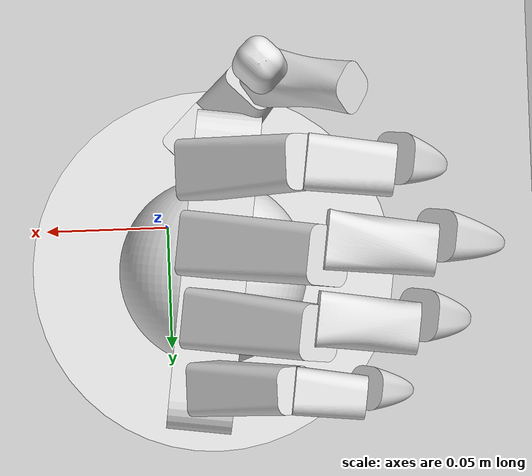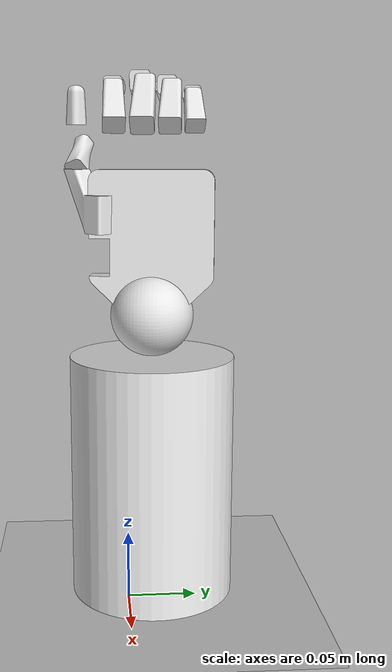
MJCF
<mujoco model="Hand_forearm">
  <compiler angle="radian" autolimits="true" meshdir="assets" />
  <option gravity="0 0 -9.81" integrator="implicitfast" />
  <default>
    <geom contype="2" conaffinity="1" />
  </default>
  <asset>
    <mesh name="fore_arm_1_0" file="fore_arm_1_0.stl" />
    <mesh name="fore_arm_1_1" file="fore_arm_1_1.stl" />
    <mesh name="wrist_1_2" file="wrist_1_2.stl" />
    <mesh name="wrist_1_3" file="wrist_1_3.stl" />
    <mesh name="human_hand_v3__Palm_1_4" file="human_hand_v3__Palm_1_4.stl" />
    <mesh name="human_hand_v3__Palm_1_5" file="human_hand_v3__Palm_1_5.stl" />
    <mesh name="Thumb_finger__Thumb_Base_1_6" file="Thumb_finger__Thumb_Base_1_6.stl" />
    <mesh name="Thumb_finger__Thumb_Base_1_7" file="Thumb_finger__Thumb_Base_1_7.stl" />
    <mesh name="Thumb_finger__Thumb_Proximal_1_8" file="Thumb_finger__Thumb_Proximal_1_8.stl" />
    <mesh name="Thumb_finger__Thumb_Proximal_1_9" file="Thumb_finger__Thumb_Proximal_1_9.stl" />
    <mesh name="Thumb_finger__Thumb_Distal_v2_1_10" file="Thumb_finger__Thumb_Distal_v2_1_10.stl" />
    <mesh name="Thumb_finger__Thumb_Distal_v2_1_11" file="Thumb_finger__Thumb_Distal_v2_1_11.stl" />
    <mesh name="index_assem__Index_Proximal_1_12" file="index_assem__Index_Proximal_1_12.stl" />
    <mesh name="index_assem__Index_Proximal_1_13" file="index_assem__Index_Proximal_1_13.stl" />
    <mesh name="index_assem__Index_Middle_1_14" file="index_assem__Index_Middle_1_14.stl" />
    <mesh name="index_assem__Index_Middle_1_15" file="index_assem__Index_Middle_1_15.stl" />
    <mesh name="index_assem__Index_Distal_1_16" file="index_assem__Index_Distal_1_16.stl" />
    <mesh name="index_assem__Index_Distal_1_17" file="index_assem__Index_Distal_1_17.stl" />
    <mesh name="Middle_Finger__Middle_Proximal_5_18" file="Middle_Finger__Middle_Proximal_5_18.stl" />
    <mesh name="Middle_Finger__Middle_Proximal_5_19" file="Middle_Finger__Middle_Proximal_5_19.stl" />
    <mesh name="Middle_Finger__Middle_Middle_4_20" file="Middle_Finger__Middle_Middle_4_20.stl" />
    <mesh name="Middle_Finger__Middle_Middle_4_21" file="Middle_Finger__Middle_Middle_4_21.stl" />
    <mesh name="Middle_Finger__Middle_Distal_4_22" file="Middle_Finger__Middle_Distal_4_22.stl" />
    <mesh name="Middle_Finger__Middle_Distal_4_23" file="Middle_Finger__Middle_Distal_4_23.stl" />
    <mesh name="Ring_finger__Ring_Proximal_1_24" file="Ring_finger__Ring_Proximal_1_24.stl" />
    <mesh name="Ring_finger__Ring_Proximal_1_25" file="Ring_finger__Ring_Proximal_1_25.stl" />
    <mesh name="Ring_finger__Ring_Middle_1_26" file="Ring_finger__Ring_Middle_1_26.stl" />
    <mesh name="Ring_finger__Ring_Middle_1_27" file="Ring_finger__Ring_Middle_1_27.stl" />
    <mesh name="Ring_finger__Ring_Distal_1_28" file="Ring_finger__Ring_Distal_1_28.stl" />
    <mesh name="Ring_finger__Ring_Distal_1_29" file="Ring_finger__Ring_Distal_1_29.stl" />
    <mesh name="Pinky_finger__Pinky_Proximal_1_30" file="Pinky_finger__Pinky_Proximal_1_30.stl" />
    <mesh name="Pinky_finger__Pinky_Proximal_1_31" file="Pinky_finger__Pinky_Proximal_1_31.stl" />
    <mesh name="Pinky_finger__Pinky_Middle_1_32" file="Pinky_finger__Pinky_Middle_1_32.stl" />
    <mesh name="Pinky_finger__Pinky_Middle_1_33" file="Pinky_finger__Pinky_Middle_1_33.stl" />
    <mesh name="Pinky_finger__Pinky_Distal_1_34" file="Pinky_finger__Pinky_Distal_1_34.stl" />
    <mesh name="Pinky_finger__Pinky_Distal_1_35" file="Pinky_finger__Pinky_Distal_1_35.stl" />
  </asset>
  <worldbody>
    <light pos="0 0 3" dir="0 0 -1" directional="true" />
    <geom name="ground" type="plane" size="5 5 0.1" contype="1" conaffinity="1" rgba="0.8 0.8 0.8 1" />
    <body name="base_link" pos="0 0 0.001" quat="0.707107 0.707107 0 0">
      <inertial pos="-0.0174187597 0.09 -0.0185985164" mass="2.03575" diaginertia="0.00366435 0.00732871 0.00732871" quat="0.707106781 0 0 -0.707106781" />
      <geom pos="0 0 0" quat="1 0 0 0" group="2" contype="0" conaffinity="0" type="mesh" mesh="fore_arm_1_0" rgba="0.894117647 0.894117647 0.894117647 1" name="base_link_visual0" />
      <geom pos="0 0 0" quat="1 0 0 0" group="3" type="mesh" mesh="fore_arm_1_1" rgba="0.4 0.4 0.4 1" name="base_link_collision0" />
      <body name="wrist_1" pos="-0.0174191077 0.209999556 -0.0185987489" quat="1 0 0 0">
        <joint name="fore_arm_1__wrist_1" pos="0 0 0" axis="0.999669 -0.0257426 0.000239032" type="hinge" range="-0.17453 0.17453" damping="0.400651" armature="0.00170595" />
        <inertial pos="3.47999681e-07 4.44016192e-07 2.32492648e-07" mass="0.113097" diaginertia="4.0715e-05 4.0715e-05 4.0715e-05" quat="0.709565028 0.704639958 0 0" />
        <geom pos="0 0 0" quat="1 0 0 0" group="2" contype="0" conaffinity="0" type="mesh" mesh="wrist_1_2" rgba="0.894117647 0.894117647 0.894117647 1" name="wrist_1_visual0" />
        <geom pos="0 0 0" quat="1 0 0 0" group="3" type="mesh" mesh="wrist_1_3" rgba="0.4 0.4 0.4 1" name="wrist_1_collision0" />
        <body name="human_hand_v3_2__Palm_1" pos="3.47999681e-07 4.44016192e-07 2.32492648e-07" quat="1 0 0 0">
          <joint name="wrist_1__human_hand_v3_2__Palm_1" pos="0 0 0" axis="0.000165001 0.0156918 0.999877" type="hinge" range="-1 1" damping="0.490622" armature="0.00256123" />
          <inertial pos="0.00221148439 0.0858546322 -0.00261542321" mass="0.146725" diaginertia="8.61669815e-05 0.000126511848 0.00020475537" quat="0.518384149 0.467397041 -0.530716045 -0.48078931" />
          <geom pos="0 0 0" quat="1 0 0 0" group="2" contype="0" conaffinity="0" type="mesh" mesh="human_hand_v3__Palm_1_4" rgba="0.894117647 0.894117647 0.894117647 1" name="human_hand_v3_2__Palm_1_visual0" />
          <geom pos="0 0 0" quat="1 0 0 0" group="3" type="mesh" mesh="human_hand_v3__Palm_1_5" rgba="0.4 0.4 0.4 1" name="human_hand_v3_2__Palm_1_collision0" />
          <body name="human_hand_v3_2__Thumb_finger_1__Thumb_Base_1" pos="0.0015137891 0.0591238369 0.0364686792" quat="1 0 0 0">
            <joint name="human_hand_v3_2__Palm_1__human_hand_v3_2__Thumb_finger_1__Thumb_Base_1" pos="0 0 0" axis="-0.0257438 -0.999625 0.00928199" type="hinge" range="0 1.5708" damping="0.00229873" ref="0.78541" limited="true" armature="4.31818e-06" />
            <inertial pos="-0.0052688188 0.0207226913 0.00560700449" mass="0.0146302" diaginertia="8.05767739e-07 3.18179048e-06 3.27284178e-06" quat="-0.398254802 0.342465709 -0.170586176 0.833673022" />
            <geom pos="0 0 0" quat="1 0 0 0" group="2" contype="0" conaffinity="0" type="mesh" mesh="Thumb_finger__Thumb_Base_1_6" rgba="0.894117647 0.894117647 0.894117647 1" name="human_hand_v3_2__Thumb_finger_1__Thumb_Base_1_visual0" />
            <geom pos="0 0 0" quat="1 0 0 0" group="3" type="mesh" mesh="Thumb_finger__Thumb_Base_1_7" rgba="0.4 0.4 0.4 1" name="human_hand_v3_2__Thumb_finger_1__Thumb_Base_1_collision0" />
            <body name="human_hand_v3_2__Thumb_finger_1__Thumb_Proximal_1" pos="-0.0160461371 0.044901719 0.0167760883" quat="1 0 0 0">
              <joint name="human_hand_v3_2__Thumb_finger_1__Thumb_Base_1__human_hand_v3_2__Thumb_finger_1__Thumb_Proximal_1" pos="0 0 0" axis="-0.706873 0.0247582 0.706907" type="hinge" range="0 1.5708" damping="0.00202173" ref="0" limited="true" armature="5.16138e-06" />
              <joint name="human_hand_v3_2__Thumb_finger_1__Thumb_Base_1__human_hand_v3_2__Thumb_finger_1__Thumb_Proximal_1_abd" type="hinge" pos="0 0 0" axis="-0.706872 0.0116576 -0.707246" range="-0.785398 0.785398" limited="true" damping="0.00202173" armature="5.16138e-06" /><inertial pos="0.000373396063 0.0144994679 -0.000134202197" mass="0.00482838" diaginertia="1.22991477e-07 4.55144399e-07 4.64430124e-07" quat="0.644084125 0.268856379 -0.281993644 -0.658294365" />
              <geom pos="0 0 0" quat="1 0 0 0" group="2" contype="0" conaffinity="0" type="mesh" mesh="Thumb_finger__Thumb_Proximal_1_8" rgba="0.894117647 0.894117647 0.894117647 1" name="human_hand_v3_2__Thumb_finger_1__Thumb_Proximal_1_visual0" />
              <geom pos="0 0 0" quat="1 0 0 0" group="3" type="mesh" mesh="Thumb_finger__Thumb_Proximal_1_9" rgba="0.4 0.4 0.4 1" name="human_hand_v3_2__Thumb_finger_1__Thumb_Proximal_1_collision0" />
              <body name="human_hand_v3_2__Thumb_finger_1__Thumb_Distal_v2_1" pos="0.000798048593 0.0309886441 -0.000287311866" quat="1 0 0 0">
                <joint name="human_hand_v3_2__Thumb_finger_1__Thumb_Proximal_1__human_hand_v3_2__Thumb_finger_1__Thumb_Distal_v2_1" pos="0 0 0" axis="-0.706872 0.0247683 0.706907" type="hinge" range="0 1.5708" damping="0.000266238" ref="0" limited="true" armature="4.43016e-07" />
                <inertial pos="0.000309622005 0.0120225614 -0.000111635152" mass="0.00306267" diaginertia="5.86965312e-08 1.93958027e-07 1.98802242e-07" quat="0.264103332 -0.646047641 0.660354259 -0.277135577" />
                <geom pos="0 0 0" quat="1 0 0 0" group="2" contype="0" conaffinity="0" type="mesh" mesh="Thumb_finger__Thumb_Distal_v2_1_10" rgba="0.894117647 0.894117647 0.894117647 1" name="human_hand_v3_2__Thumb_finger_1__Thumb_Distal_v2_1_visual0" />
                <geom pos="0 0 0" quat="1 0 0 0" group="3" type="mesh" mesh="Thumb_finger__Thumb_Distal_v2_1_11" rgba="0.4 0.4 0.4 1" name="human_hand_v3_2__Thumb_finger_1__Thumb_Distal_v2_1_collision0" />
              </body>
            </body>
          </body>
          <body name="human_hand_v3_2__index_assem_2__Index_Proximal_1" pos="0.00344966462 0.134209946 0.0267710813" quat="1 0 0 0">
            <joint name="human_hand_v3_2__Palm_1__human_hand_v3_2__index_assem_2__Index_Proximal_1" pos="0 0 0" axis="-0 0.00928507 0.999957" type="hinge" range="0 1.5708" damping="0.00509945" ref="0.785398" limited="true" armature="1.46717e-05" />
            <inertial pos="-0.0127746596 0.0134494159 -0.00012488389" mass="0.00857536" diaginertia="3.11851083e-07 1.23617188e-06 1.23617804e-06" quat="0.630568579 -0.668369518 0.284456211 -0.273404679" />
            <geom pos="0 0 0" quat="1 0 0 0" group="2" contype="0" conaffinity="0" type="mesh" mesh="index_assem__Index_Proximal_1_12" rgba="0.894117647 0.894117647 0.894117647 1" name="human_hand_v3_2__index_assem_2__Index_Proximal_1_visual0" />
            <geom pos="0 0 0" quat="1 0 0 0" group="3" type="mesh" mesh="index_assem__Index_Proximal_1_13" rgba="0.4 0.4 0.4 1" name="human_hand_v3_2__index_assem_2__Index_Proximal_1_collision0" />
            <body name="human_hand_v3_2__index_assem_2__Index_Middle_1" pos="-0.0268580846 0.0282767458 -0.00026256293" quat="1 0 0 0">
              <joint name="human_hand_v3_2__index_assem_2__Index_Proximal_1__human_hand_v3_2__index_assem_2__Index_Middle_1" pos="0 0 0" axis="0 0.00928507 0.999957" type="hinge" range="0 1.5708" damping="0.000669185" ref="0.785398" limited="true" armature="1.34686e-06" />
              <inertial pos="-0.0106441693 0.000274100035 -2.54514818e-06" mass="0.0037779" diaginertia="1.05473265e-07 2.04658729e-07 2.04660006e-07" quat="0.999910978 0.00351040613 -0.00016471601 -0.0128719408" />
              <geom pos="0 0 0" quat="1 0 0 0" group="2" contype="0" conaffinity="0" type="mesh" mesh="index_assem__Index_Middle_1_14" rgba="0.894117647 0.894117647 0.894117647 1" name="human_hand_v3_2__index_assem_2__Index_Middle_1_visual0" />
              <geom pos="0 0 0" quat="1 0 0 0" group="3" type="mesh" mesh="index_assem__Index_Middle_1_15" rgba="0.4 0.4 0.4 1" name="human_hand_v3_2__index_assem_2__Index_Middle_1_collision0" />
              <body name="human_hand_v3_2__index_assem_2__Index_Distal_1" pos="-0.0219927086 0.000566338435 -5.25871964e-06" quat="1 0 0 0">
                <joint name="human_hand_v3_2__index_assem_2__Index_Middle_1__human_hand_v3_2__index_assem_2__Index_Distal_1" pos="0 0 0" axis="0 0.00928507 0.999957" type="hinge" range="0 1.5708" damping="0.000105071" ref="0.785356" limited="true" armature="6.89998e-08" />
                <inertial pos="-0.00483404282 -0.00459072767 4.27185014e-05" mass="0.00155249" diaginertia="2.58713669e-08 4.74384234e-08 4.74400097e-08" quat="0.926692432 -0.0614322629 -0.0210865155 0.370165602" />
                <geom pos="0 0 0" quat="1 0 0 0" group="2" contype="0" conaffinity="0" type="mesh" mesh="index_assem__Index_Distal_1_16" rgba="0.894117647 0.894117647 0.894117647 1" name="human_hand_v3_2__index_assem_2__Index_Distal_1_visual0" />
                <geom pos="0 0 0" quat="1 0 0 0" group="3" type="mesh" mesh="index_assem__Index_Distal_1_17" rgba="0.4 0.4 0.4 1" name="human_hand_v3_2__index_assem_2__Index_Distal_1_collision0" />
              </body>
            </body>
          </body>
          <body name="human_hand_v3_2__Middle_Finger_1__Middle_Proximal_5" pos="0.00344966462 0.134028887 0.0072719219" quat="1 0 0 0">
            <joint name="human_hand_v3_2__Palm_1__human_hand_v3_2__Middle_Finger_1__Middle_Proximal_5" pos="0 0 0" axis="-0 0.00928507 0.999957" type="hinge" range="0 1.5708" damping="0.0082076" ref="0.785398" limited="true" armature="2.54171e-05" />
            <inertial pos="-0.0147921096 0.0155734276 -0.000144606955" mass="0.0112897" diaginertia="4.68649039e-07 2.1293349e-06 2.12933606e-06" quat="0.350315552 0.181506149 0.430276883 0.811909069" />
            <geom pos="0 0 0" quat="1 0 0 0" group="2" contype="0" conaffinity="0" type="mesh" mesh="Middle_Finger__Middle_Proximal_5_18" rgba="0.894117647 0.894117647 0.894117647 1" name="human_hand_v3_2__Middle_Finger_1__Middle_Proximal_5_visual0" />
            <geom pos="0 0 0" quat="1 0 0 0" group="3" type="mesh" mesh="Middle_Finger__Middle_Proximal_5_19" rgba="0.4 0.4 0.4 1" name="human_hand_v3_2__Middle_Finger_1__Middle_Proximal_5_collision0" />
            <body name="human_hand_v3_2__Middle_Finger_1__Middle_Middle_4" pos="-0.0309900976 0.0326270143 -0.000302957226" quat="1 0 0 0">
              <joint name="human_hand_v3_2__Middle_Finger_1__Middle_Proximal_5__human_hand_v3_2__Middle_Finger_1__Middle_Middle_4" pos="0 0 0" axis="0 0.00928507 0.999957" type="hinge" range="0 1.5708" damping="0.0011812" ref="0.785398" limited="true" armature="2.66775e-06" />
              <inertial pos="-0.0126703486 0.000326276219 -3.02974891e-06" mass="0.00456309" diaginertia="1.25674477e-07 3.4826851e-07 3.48270013e-07" quat="0.999878871 0.00874812494 -0.00023212437 -0.0128708957" />
              <geom pos="0 0 0" quat="1 0 0 0" group="2" contype="0" conaffinity="0" type="mesh" mesh="Middle_Finger__Middle_Middle_4_20" rgba="0.894117647 0.894117647 0.894117647 1" name="human_hand_v3_2__Middle_Finger_1__Middle_Middle_4_visual0" />
              <geom pos="0 0 0" quat="1 0 0 0" group="3" type="mesh" mesh="Middle_Finger__Middle_Middle_4_21" rgba="0.4 0.4 0.4 1" name="human_hand_v3_2__Middle_Finger_1__Middle_Middle_4_collision0" />
              <body name="human_hand_v3_2__Middle_Finger_1__Middle_Distal_4" pos="-0.0269910515 0.000695051715 -6.4538832e-06" quat="1 0 0 0">
                <joint name="human_hand_v3_2__Middle_Finger_1__Middle_Middle_4__human_hand_v3_2__Middle_Finger_1__Middle_Distal_4" pos="0 0 0" axis="0 0.00928507 0.999957" type="hinge" range="0 1.5708" damping="0.000164801" ref="0.785407" limited="true" armature="1.69746e-07" />
                <inertial pos="-0.00652539237 -0.00619757999 5.78687614e-05" mass="0.00209578" diaginertia="3.4925756e-08 1.02342655e-07 1.02343889e-07" quat="0.558637004 -0.741931254 -0.294107599 0.225750817" />
                <geom pos="0 0 0" quat="1 0 0 0" group="2" contype="0" conaffinity="0" type="mesh" mesh="Middle_Finger__Middle_Distal_4_22" rgba="0.894117647 0.894117647 0.894117647 1" name="human_hand_v3_2__Middle_Finger_1__Middle_Distal_4_visual0" />
                <geom pos="0 0 0" quat="1 0 0 0" group="3" type="mesh" mesh="Middle_Finger__Middle_Distal_4_23" rgba="0.4 0.4 0.4 1" name="human_hand_v3_2__Middle_Finger_1__Middle_Distal_4_collision0" />
              </body>
            </body>
          </body>
          <body name="human_hand_v3_2__Ring_finger_1__Ring_Proximal_1" pos="0.003449652 0.133847556 -0.0122272325" quat="1 0 0 0">
            <joint name="human_hand_v3_2__Palm_1__human_hand_v3_2__Ring_finger_1__Ring_Proximal_1" pos="0 0 0" axis="-0 0.009285 0.999957" type="hinge" range="0 1.5708" damping="0.00574355" ref="0.785388" limited="true" armature="1.69685e-05" />
            <inertial pos="-0.0134297531 0.0141394065 -0.000131293396" mass="0.00901512" diaginertia="3.27843097e-07 1.41903445e-06 1.41903946e-06" quat="0.918875744 -0.0013157 -0.00309844177 -0.394532681" />
            <geom pos="0 0 0" quat="1 0 0 0" group="2" contype="0" conaffinity="0" type="mesh" mesh="Ring_finger__Ring_Proximal_1_24" rgba="0.894117647 0.894117647 0.894117647 1" name="human_hand_v3_2__Ring_finger_1__Ring_Proximal_1_visual0" />
            <geom pos="0 0 0" quat="1 0 0 0" group="3" type="mesh" mesh="Ring_finger__Ring_Proximal_1_25" rgba="0.4 0.4 0.4 1" name="human_hand_v3_2__Ring_finger_1__Ring_Proximal_1_collision0" />
            <body name="human_hand_v3_2__Ring_finger_1__Ring_Middle_1" pos="-0.028235 0.029727 -0.000276" quat="1 0 0 0">
              <joint name="human_hand_v3_2__Ring_finger_1__Ring_Proximal_1__human_hand_v3_2__Ring_finger_1__Ring_Middle_1" pos="0 0 0" axis="-0 0.009285 0.999957" type="hinge" range="0 1.5708" damping="0.000800206" ref="0.785391" limited="true" armature="1.69685e-06" />
              <inertial pos="-0.0120553535 0.00031053637 -2.91517597e-06" mass="0.00389782" diaginertia="9.81451082e-08 2.59583979e-07 2.59584013e-07" quat="0.986475757 0.163400945 -0.0022214553 -0.0126797998" />
              <geom pos="0 0 0" quat="1 0 0 0" group="2" contype="0" conaffinity="0" type="mesh" mesh="Ring_finger__Ring_Middle_1_26" rgba="0.894117647 0.894117647 0.894117647 1" name="human_hand_v3_2__Ring_finger_1__Ring_Middle_1_visual0" />
              <geom pos="0 0 0" quat="1 0 0 0" group="3" type="mesh" mesh="Ring_finger__Ring_Middle_1_27" rgba="0.4 0.4 0.4 1" name="human_hand_v3_2__Ring_finger_1__Ring_Middle_1_collision0" />
              <body name="human_hand_v3_2__Ring_finger_1__Ring_Distal_1" pos="-0.024992 0.000644 -6e-06" quat="1 0 0 0">
                <joint name="human_hand_v3_2__Ring_finger_1__Ring_Middle_1__human_hand_v3_2__Ring_finger_1__Ring_Distal_1" pos="0 0 0" axis="-0 0.009285 0.999957" type="hinge" range="0 1.5708" damping="0.000105076" ref="0.78548" limited="true" armature="6.90062e-08" />
                <inertial pos="-0.00483377421 -0.00459146544 4.25308403e-05" mass="0.00155249" diaginertia="2.58713384e-08 4.74384518e-08 4.74399097e-08" quat="0.926318667 -0.0669036647 -0.0232758093 0.370021437" />
                <geom pos="0 0 0" quat="1 0 0 0" group="2" contype="0" conaffinity="0" type="mesh" mesh="Ring_finger__Ring_Distal_1_28" rgba="0.894117647 0.894117647 0.894117647 1" name="human_hand_v3_2__Ring_finger_1__Ring_Distal_1_visual0" />
                <geom pos="0 0 0" quat="1 0 0 0" group="3" type="mesh" mesh="Ring_finger__Ring_Distal_1_29" rgba="0.4 0.4 0.4 1" name="human_hand_v3_2__Ring_finger_1__Ring_Distal_1_collision0" />
              </body>
            </body>
          </body>
          <body name="human_hand_v3_2__Pinky_finger_1__Pinky_Proximal_1" pos="0.003449652 0.133680556 -0.0302262325" quat="1 0 0 0">
            <joint name="human_hand_v3_2__Palm_1__human_hand_v3_2__Pinky_finger_1__Pinky_Proximal_1" pos="0 0 0" axis="-0 0.009285 0.999957" type="hinge" range="0 1.5708" damping="0.00226384" ref="0.785377" limited="true" armature="5.87773e-06" />
            <inertial pos="-0.0103879211 0.0109367716 -0.000101805183" mass="0.00524416" diaginertia="1.42028037e-07 5.14706065e-07 5.14708898e-07" quat="0.918861153 -0.00534850109 -0.00136756087 -0.394542399" />
            <geom pos="0 0 0" quat="1 0 0 0" group="2" contype="0" conaffinity="0" type="mesh" mesh="Pinky_finger__Pinky_Proximal_1_30" rgba="0.894117647 0.894117647 0.894117647 1" name="human_hand_v3_2__Pinky_finger_1__Pinky_Proximal_1_visual0" />
            <geom pos="0 0 0" quat="1 0 0 0" group="3" type="mesh" mesh="Pinky_finger__Pinky_Proximal_1_31" rgba="0.4 0.4 0.4 1" name="human_hand_v3_2__Pinky_finger_1__Pinky_Proximal_1_collision0" />
            <body name="human_hand_v3_2__Pinky_finger_1__Pinky_Middle_1" pos="-0.022037 0.023202 -0.000216" quat="1 0 0 0">
              <joint name="human_hand_v3_2__Pinky_finger_1__Pinky_Proximal_1__human_hand_v3_2__Pinky_finger_1__Pinky_Middle_1" pos="0 0 0" axis="-0 0.009285 0.999957" type="hinge" range="0 1.5708" damping="0.000304596" ref="0.78544" limited="true" armature="5.61595e-07" />
              <inertial pos="-0.00864011152 0.000222056272 -1.73112356e-06" mass="0.00219107" diaginertia="4.31908854e-08 8.04825124e-08 8.04829022e-08" quat="0.999881005 0.00850073781 -0.00022895224 -0.012870895" />
              <geom pos="0 0 0" quat="1 0 0 0" group="2" contype="0" conaffinity="0" type="mesh" mesh="Pinky_finger__Pinky_Middle_1_32" rgba="0.894117647 0.894117647 0.894117647 1" name="human_hand_v3_2__Pinky_finger_1__Pinky_Middle_1_visual0" />
              <geom pos="0 0 0" quat="1 0 0 0" group="3" type="mesh" mesh="Pinky_finger__Pinky_Middle_1_33" rgba="0.4 0.4 0.4 1" name="human_hand_v3_2__Pinky_finger_1__Pinky_Middle_1_collision0" />
              <body name="human_hand_v3_2__Pinky_finger_1__Pinky_Distal_1" pos="-0.017994 0.000463 -4e-06" quat="1 0 0 0">
                <joint name="human_hand_v3_2__Pinky_finger_1__Pinky_Middle_1__human_hand_v3_2__Pinky_finger_1__Pinky_Distal_1" pos="0 0 0" axis="-0 0.009285 0.999957" type="hinge" range="0 1.5708" damping="7.45611e-05" ref="0.785336" limited="true" armature="3.4746e-08" />
                <inertial pos="-0.0043506102 -0.00413163501 3.87522226e-05" mass="0.000965173" diaginertia="1.10480684e-08 2.2896544e-08 2.28979876e-08" quat="0.928702712 0.0069854369 0.00624033936 0.370706803" />
                <geom pos="0 0 0" quat="1 0 0 0" group="2" contype="0" conaffinity="0" type="mesh" mesh="Pinky_finger__Pinky_Distal_1_34" rgba="0.894117647 0.894117647 0.894117647 1" name="human_hand_v3_2__Pinky_finger_1__Pinky_Distal_1_visual0" />
                <geom pos="0 0 0" quat="1 0 0 0" group="3" type="mesh" mesh="Pinky_finger__Pinky_Distal_1_35" rgba="0.4 0.4 0.4 1" name="human_hand_v3_2__Pinky_finger_1__Pinky_Distal_1_collision0" />
              </body>
            </body>
          </body>
        </body>
      </body>
    </body>
  </worldbody>
  <actuator><position name="act_fore_arm_1__wrist_1" joint="fore_arm_1__wrist_1" kp="11.7619" ctrllimited="true" ctrlrange="-0.17453 0.17453" forcelimited="true" forcerange="-5.88095 5.88095" /><position name="act_wrist_1__human_hand_v3_2__Palm_1" joint="wrist_1__human_hand_v3_2__Palm_1" kp="11.7478" ctrllimited="true" ctrlrange="-1 1" forcelimited="true" forcerange="-5.87388 5.87388" /><position name="act_human_hand_v3_2__Palm_1__human_hand_v3_2__Thumb_finger_1__Thumb_Base_1" joint="human_hand_v3_2__Palm_1__human_hand_v3_2__Thumb_finger_1__Thumb_Base_1" kp="0.152963" ctrllimited="true" ctrlrange="0 1.5708" forcelimited="true" forcerange="-0.0764814 0.0764814" /><position name="act_human_hand_v3_2__Thumb_finger_1__Thumb_Base_1__human_hand_v3_2__Thumb_finger_1__Thumb_Proximal_1" joint="human_hand_v3_2__Thumb_finger_1__Thumb_Base_1__human_hand_v3_2__Thumb_finger_1__Thumb_Proximal_1" kp="0.0989896" ctrllimited="true" ctrlrange="0 1.5708" forcelimited="true" forcerange="-0.0494948 0.0494948" /><position name="act_human_hand_v3_2__Thumb_finger_1__Thumb_Base_1__human_hand_v3_2__Thumb_finger_1__Thumb_Proximal_1_abd" joint="human_hand_v3_2__Thumb_finger_1__Thumb_Base_1__human_hand_v3_2__Thumb_finger_1__Thumb_Proximal_1_abd" kp="0.0989896" ctrllimited="true" ctrlrange="-0.785398 0.785398" forcelimited="true" forcerange="-0.0494948 0.0494948" /><position name="act_human_hand_v3_2__Thumb_finger_1__Thumb_Proximal_1__human_hand_v3_2__Thumb_finger_1__Thumb_Distal_v2_1" joint="human_hand_v3_2__Thumb_finger_1__Thumb_Proximal_1__human_hand_v3_2__Thumb_finger_1__Thumb_Distal_v2_1" kp="0.02" ctrllimited="true" ctrlrange="0 1.5708" forcelimited="true" forcerange="-0.01 0.01" /><position name="act_human_hand_v3_2__Palm_1__human_hand_v3_2__index_assem_2__Index_Proximal_1" joint="human_hand_v3_2__Palm_1__human_hand_v3_2__index_assem_2__Index_Proximal_1" kp="0.221552" ctrllimited="true" ctrlrange="0 1.5708" forcelimited="true" forcerange="-0.110776 0.110776" /><position name="act_human_hand_v3_2__index_assem_2__Index_Proximal_1__human_hand_v3_2__index_assem_2__Index_Middle_1" joint="human_hand_v3_2__index_assem_2__Index_Proximal_1__human_hand_v3_2__index_assem_2__Index_Middle_1" kp="0.0415604" ctrllimited="true" ctrlrange="0 1.5708" forcelimited="true" forcerange="-0.0207802 0.0207802" /><position name="act_human_hand_v3_2__index_assem_2__Index_Middle_1__human_hand_v3_2__index_assem_2__Index_Distal_1" joint="human_hand_v3_2__index_assem_2__Index_Middle_1__human_hand_v3_2__index_assem_2__Index_Distal_1" kp="0.02" ctrllimited="true" ctrlrange="0 1.5708" forcelimited="true" forcerange="-0.01 0.01" /><position name="act_human_hand_v3_2__Palm_1__human_hand_v3_2__Middle_Finger_1__Middle_Proximal_5" joint="human_hand_v3_2__Palm_1__human_hand_v3_2__Middle_Finger_1__Middle_Proximal_5" kp="0.331297" ctrllimited="true" ctrlrange="0 1.5708" forcelimited="true" forcerange="-0.165648 0.165648" /><position name="act_human_hand_v3_2__Middle_Finger_1__Middle_Proximal_5__human_hand_v3_2__Middle_Finger_1__Middle_Middle_4" joint="human_hand_v3_2__Middle_Finger_1__Middle_Proximal_5__human_hand_v3_2__Middle_Finger_1__Middle_Middle_4" kp="0.0653751" ctrllimited="true" ctrlrange="0 1.5708" forcelimited="true" forcerange="-0.0326875 0.0326875" /><position name="act_human_hand_v3_2__Middle_Finger_1__Middle_Middle_4__human_hand_v3_2__Middle_Finger_1__Middle_Distal_4" joint="human_hand_v3_2__Middle_Finger_1__Middle_Middle_4__human_hand_v3_2__Middle_Finger_1__Middle_Distal_4" kp="0.02" ctrllimited="true" ctrlrange="0 1.5708" forcelimited="true" forcerange="-0.01 0.01" /><position name="act_human_hand_v3_2__Palm_1__human_hand_v3_2__Ring_finger_1__Ring_Proximal_1" joint="human_hand_v3_2__Palm_1__human_hand_v3_2__Ring_finger_1__Ring_Proximal_1" kp="0.243011" ctrllimited="true" ctrlrange="0 1.5708" forcelimited="true" forcerange="-0.121506 0.121506" /><position name="act_human_hand_v3_2__Ring_finger_1__Ring_Proximal_1__human_hand_v3_2__Ring_finger_1__Ring_Middle_1" joint="human_hand_v3_2__Ring_finger_1__Ring_Proximal_1__human_hand_v3_2__Ring_finger_1__Ring_Middle_1" kp="0.0471706" ctrllimited="true" ctrlrange="0 1.5708" forcelimited="true" forcerange="-0.0235853 0.0235853" /><position name="act_human_hand_v3_2__Ring_finger_1__Ring_Middle_1__human_hand_v3_2__Ring_finger_1__Ring_Distal_1" joint="human_hand_v3_2__Ring_finger_1__Ring_Middle_1__human_hand_v3_2__Ring_finger_1__Ring_Distal_1" kp="0.02" ctrllimited="true" ctrlrange="0 1.5708" forcelimited="true" forcerange="-0.01 0.01" /><position name="act_human_hand_v3_2__Palm_1__human_hand_v3_2__Pinky_finger_1__Pinky_Proximal_1" joint="human_hand_v3_2__Palm_1__human_hand_v3_2__Pinky_finger_1__Pinky_Proximal_1" kp="0.108992" ctrllimited="true" ctrlrange="0 1.5708" forcelimited="true" forcerange="-0.0544959 0.0544959" /><position name="act_human_hand_v3_2__Pinky_finger_1__Pinky_Proximal_1__human_hand_v3_2__Pinky_finger_1__Pinky_Middle_1" joint="human_hand_v3_2__Pinky_finger_1__Pinky_Proximal_1__human_hand_v3_2__Pinky_finger_1__Pinky_Middle_1" kp="0.0206508" ctrllimited="true" ctrlrange="0 1.5708" forcelimited="true" forcerange="-0.0103254 0.0103254" /><position name="act_human_hand_v3_2__Pinky_finger_1__Pinky_Middle_1__human_hand_v3_2__Pinky_finger_1__Pinky_Distal_1" joint="human_hand_v3_2__Pinky_finger_1__Pinky_Middle_1__human_hand_v3_2__Pinky_finger_1__Pinky_Distal_1" kp="0.02" ctrllimited="true" ctrlrange="0 1.5708" forcelimited="true" forcerange="-0.01 0.01" /></actuator><sensor><jointpos name="q_fore_arm_1__wrist_1" joint="fore_arm_1__wrist_1" /><jointpos name="q_wrist_1__human_hand_v3_2__Palm_1" joint="wrist_1__human_hand_v3_2__Palm_1" /><jointpos name="q_human_hand_v3_2__Palm_1__human_hand_v3_2__Thumb_finger_1__Thumb_Base_1" joint="human_hand_v3_2__Palm_1__human_hand_v3_2__Thumb_finger_1__Thumb_Base_1" /><jointpos name="q_human_hand_v3_2__Thumb_finger_1__Thumb_Base_1__human_hand_v3_2__Thumb_finger_1__Thumb_Proximal_1" joint="human_hand_v3_2__Thumb_finger_1__Thumb_Base_1__human_hand_v3_2__Thumb_finger_1__Thumb_Proximal_1" /><jointpos name="q_human_hand_v3_2__Thumb_finger_1__Thumb_Base_1__human_hand_v3_2__Thumb_finger_1__Thumb_Proximal_1_abd" joint="human_hand_v3_2__Thumb_finger_1__Thumb_Base_1__human_hand_v3_2__Thumb_finger_1__Thumb_Proximal_1_abd" /><jointpos name="q_human_hand_v3_2__Thumb_finger_1__Thumb_Proximal_1__human_hand_v3_2__Thumb_finger_1__Thumb_Distal_v2_1" joint="human_hand_v3_2__Thumb_finger_1__Thumb_Proximal_1__human_hand_v3_2__Thumb_finger_1__Thumb_Distal_v2_1" /><jointpos name="q_human_hand_v3_2__Palm_1__human_hand_v3_2__index_assem_2__Index_Proximal_1" joint="human_hand_v3_2__Palm_1__human_hand_v3_2__index_assem_2__Index_Proximal_1" /><jointpos name="q_human_hand_v3_2__index_assem_2__Index_Proximal_1__human_hand_v3_2__index_assem_2__Index_Middle_1" joint="human_hand_v3_2__index_assem_2__Index_Proximal_1__human_hand_v3_2__index_assem_2__Index_Middle_1" /><jointpos name="q_human_hand_v3_2__index_assem_2__Index_Middle_1__human_hand_v3_2__index_assem_2__Index_Distal_1" joint="human_hand_v3_2__index_assem_2__Index_Middle_1__human_hand_v3_2__index_assem_2__Index_Distal_1" /><jointpos name="q_human_hand_v3_2__Palm_1__human_hand_v3_2__Middle_Finger_1__Middle_Proximal_5" joint="human_hand_v3_2__Palm_1__human_hand_v3_2__Middle_Finger_1__Middle_Proximal_5" /><jointpos name="q_human_hand_v3_2__Middle_Finger_1__Middle_Proximal_5__human_hand_v3_2__Middle_Finger_1__Middle_Middle_4" joint="human_hand_v3_2__Middle_Finger_1__Middle_Proximal_5__human_hand_v3_2__Middle_Finger_1__Middle_Middle_4" /><jointpos name="q_human_hand_v3_2__Middle_Finger_1__Middle_Middle_4__human_hand_v3_2__Middle_Finger_1__Middle_Distal_4" joint="human_hand_v3_2__Middle_Finger_1__Middle_Middle_4__human_hand_v3_2__Middle_Finger_1__Middle_Distal_4" /><jointpos name="q_human_hand_v3_2__Palm_1__human_hand_v3_2__Ring_finger_1__Ring_Proximal_1" joint="human_hand_v3_2__Palm_1__human_hand_v3_2__Ring_finger_1__Ring_Proximal_1" /><jointpos name="q_human_hand_v3_2__Ring_finger_1__Ring_Proximal_1__human_hand_v3_2__Ring_finger_1__Ring_Middle_1" joint="human_hand_v3_2__Ring_finger_1__Ring_Proximal_1__human_hand_v3_2__Ring_finger_1__Ring_Middle_1" /><jointpos name="q_human_hand_v3_2__Ring_finger_1__Ring_Middle_1__human_hand_v3_2__Ring_finger_1__Ring_Distal_1" joint="human_hand_v3_2__Ring_finger_1__Ring_Middle_1__human_hand_v3_2__Ring_finger_1__Ring_Distal_1" /><jointpos name="q_human_hand_v3_2__Palm_1__human_hand_v3_2__Pinky_finger_1__Pinky_Proximal_1" joint="human_hand_v3_2__Palm_1__human_hand_v3_2__Pinky_finger_1__Pinky_Proximal_1" /><jointpos name="q_human_hand_v3_2__Pinky_finger_1__Pinky_Proximal_1__human_hand_v3_2__Pinky_finger_1__Pinky_Middle_1" joint="human_hand_v3_2__Pinky_finger_1__Pinky_Proximal_1__human_hand_v3_2__Pinky_finger_1__Pinky_Middle_1" /><jointpos name="q_human_hand_v3_2__Pinky_finger_1__Pinky_Middle_1__human_hand_v3_2__Pinky_finger_1__Pinky_Distal_1" joint="human_hand_v3_2__Pinky_finger_1__Pinky_Middle_1__human_hand_v3_2__Pinky_finger_1__Pinky_Distal_1" /></sensor></mujoco>
